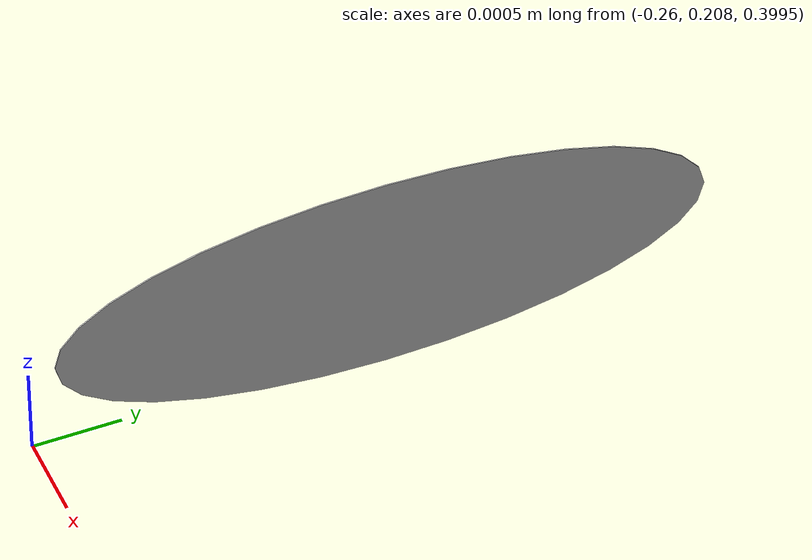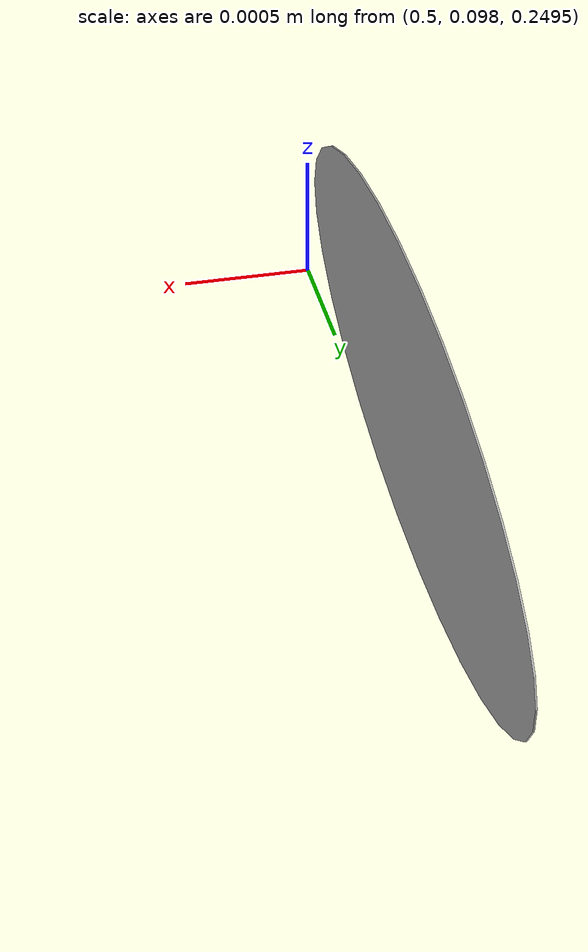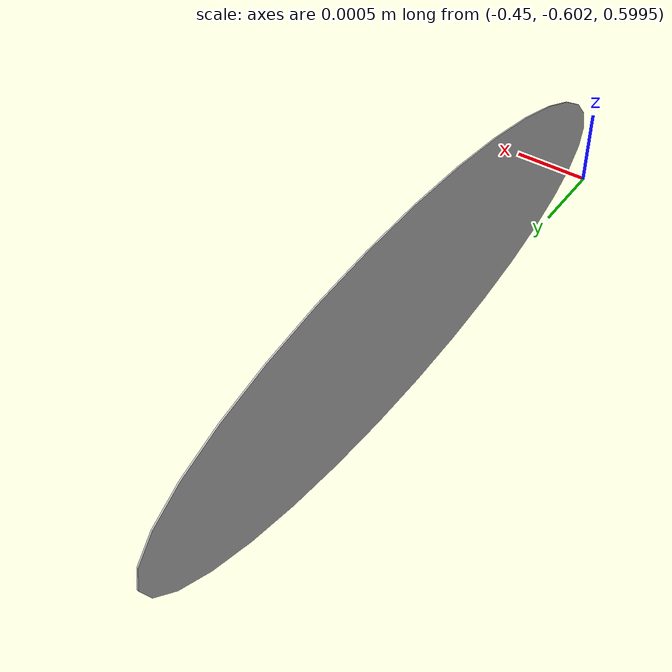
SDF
<sdf version="1.4">
	<world name="default">
    <!-- A global light source -->
    <include>
      <uri>model://sun</uri>
    </include>

	<model name='ground_plane'>
		<static>1</static>
		<link name='link'>
			<collision name='collision'>
				<geometry>
					<plane>
						<normal>0 0 1</normal>
						<size>100 100</size>
					</plane>
				</geometry>
				<surface>
					<friction>
						<ode>
							<mu>100</mu>
							<mu2>50</mu2>
						</ode>
					</friction>
					<bounce/>
					<contact>
						<ode/>
					</contact>
				</surface>
				<max_contacts>10</max_contacts>
			</collision>
			<visual name='visual'>
				<cast_shadows>0</cast_shadows>
				<geometry>
					<plane>
						<normal>0 0 1</normal>
						<size>100 100</size>
					</plane>
				</geometry>
				<material>
					<script>
						<uri>file://media/materials/scripts/gazebo.material</uri>
						<name>Gazebo/Grey</name>
					</script>
				</material>
			</visual>
			<velocity_decay>
				<linear>0</linear>
				<angular>0</angular>
			</velocity_decay>
			<self_collide>0</self_collide>
			<kinematic>0</kinematic>
			<gravity>1</gravity>
		</link>
			<!-- camera -->
 			<link name='camera_link'>
				<pose>0 0 2.4364 0 1.57 1.57</pose>  <!-- camera placed at a heigth of 8 feet-->
				<inertial>
					<mass>0.1</mass>
					<inertia>
						<ixx>1</ixx>
						<ixy>0</ixy>
						<ixz>0</ixz>
						<iyy>1</iyy>
						<iyz>0</iyz>
						<izz>1</izz>
					</inertia>
				</inertial>
				<visual name='visual'>
					<geometry>
						<box>
							<size>0.001 0.001 0.001</size>
						</box>
					</geometry>
				</visual>
				<sensor type='camera' name='camera'>
					<camera name='overhead_cam'>
						<horizontal_fov>1.0</horizontal_fov>
						<image>
							<width>1280</width>
							<height>1280</height>
						</image>
						<clip>
							<near>0.1</near>
							<far>2.5</far>
						</clip>

					</camera>

					<plugin name='camera_control' filename='libgazebo_ros_camera.so'>
						<alwaysOn>true</alwaysOn>
						<updateRate>0</updateRate>
						<cameraName>gazebo/overhead_cam</cameraName>
						<imageTopicName>image_rect_color</imageTopicName>
						<cameraInfoTopicName>camera_info</cameraInfoTopicName>
						<frameName>overhead_cam_frame</frameName>
					</plugin>
					<always_on>1</always_on>
					<update_rate>30</update_rate>
					<visualize>0</visualize>

				</sensor>

				<gravity>1</gravity>
			</link>
			<!-- camera link complete -->

		<!-- whycon markers -->

		</model>
		<model name="Marker1">
			<static>true</static>
			<link name="link">
				<pose>0 0 0.2 0 1.570796327 0</pose>
				<visual name="visual">
					<geometry>
						<mesh>
							<uri>model://whycon_marker/meshes/whycon_marker.dae</uri>
							<scale>0.025 0.075 0.075</scale>
						</mesh>
					</geometry>
				</visual>
			</link>
		</model>
		<model name="Marker2">
			<static>true</static>
			<link name="link">
				<pose>0.5 0.1 0.25 0 1.570796327 0</pose>
				<visual name="visual">
					<geometry>
						<mesh>
							<uri>model://whycon_marker/meshes/whycon_marker.dae</uri>
							<scale>0.025 0.075 0.075</scale>
						</mesh>
					</geometry>
				</visual>
			</link>
		</model>
		<model name="Marker3">
			<static>true</static>
			<link name="link">
				<pose>-0.26 0.21 0.4 0 1.570796327 0</pose>
				<visual name="visual">
					<geometry>
						<mesh>
							<uri>model://whycon_marker/meshes/whycon_marker.dae</uri>
							<scale>0.025 0.075 0.075</scale>
						</mesh>
					</geometry>
				</visual>
			</link>
		</model>
		<model name="Marker4">
			<static>true</static>
			<link name="link">
				<pose>-0.45 -0.6 0.6 0 1.570796327 0</pose>
				<visual name="visual">
					<geometry>
						<mesh>
							<uri>model://whycon_marker/meshes/whycon_marker.dae</uri>
							<scale>0.025 0.075 0.075</scale>
						</mesh>
					</geometry>
				</visual>
			</link>
		</model>

	</world>
</sdf>
